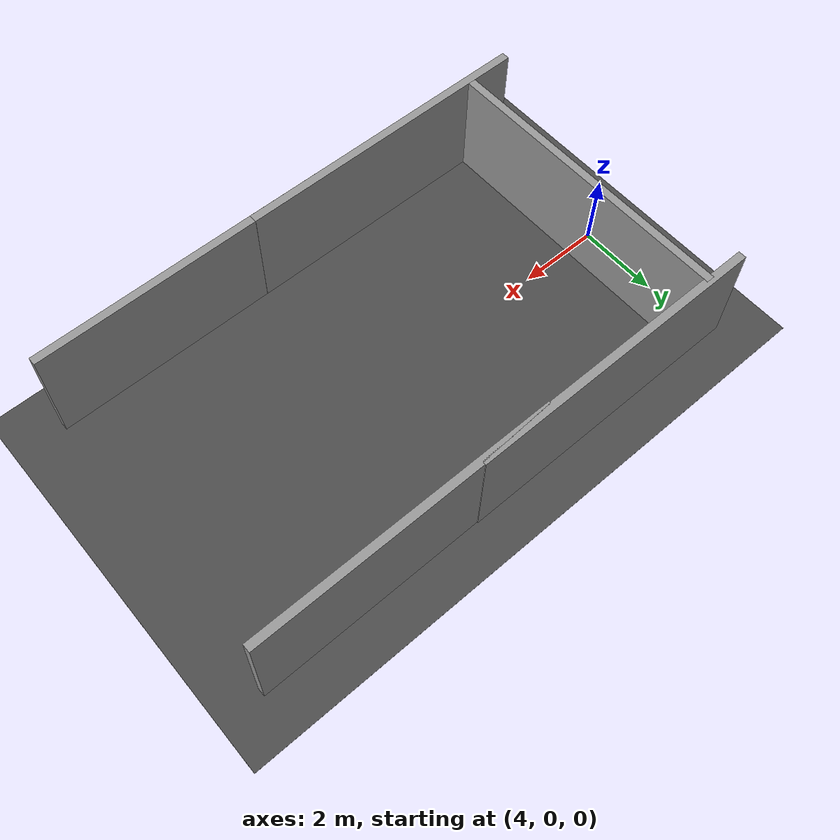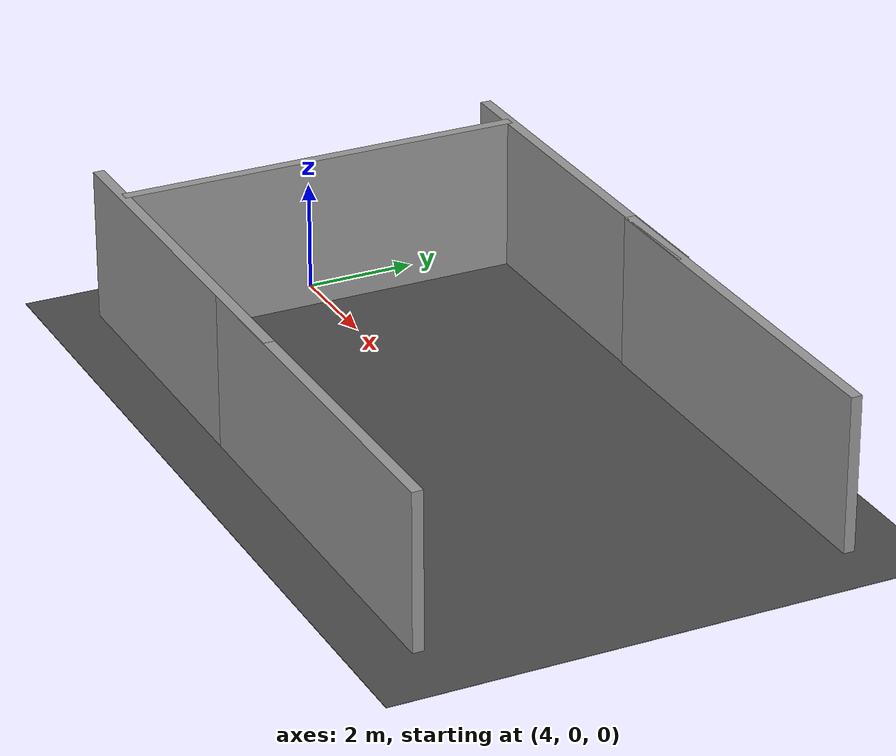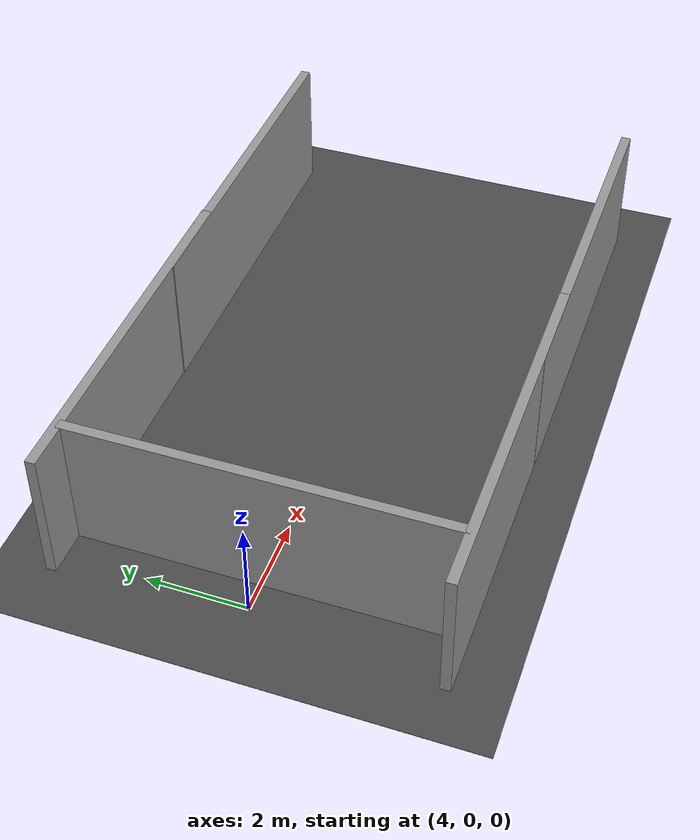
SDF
<sdf version="1.6">
 <world name="default">
  <scene>
   <sky><clouds><speed>20</speed></clouds></sky>
   <ambient>0.4 0.4 0.4 1</ambient>
   <background>0.7 0.7 0.7 1</background>
   <shadows>1</shadows>
  </scene>
  <light name="sun" type="directional">
   <pose>0 0 10 0 -0 0</pose>
   <diffuse>0.8 0.8 0.8 1</diffuse>
   <specular>0.1 0.1 0.1 1</specular>
   <attenuation>
    <range>1000</range>
    <constant>0.9</constant>
    <linear>0.01</linear>
    <quadratic>0.001</quadratic>
   </attenuation>
   <direction>-0.5 0.5 -1</direction>
  </light>
  <model name="asphalt_plane">
   <pose>-0.012146 -0.215469 0 0 -0 0</pose>
   <static>1</static>
   <link name="link">
    <collision name="collision"><geometry><box><size>9869.91 10000 0.01</size></box></geometry></collision>
    <visual name="visual">
     <cast_shadows>0</cast_shadows>
     <geometry><box><size>98.6991 100 0.01</size></box></geometry>
     <material>
      <script>
       <uri>file:///home/jtorde/Desktop/ws/src/acl-ros-extra-v2/acl_sim/urdf/grass/materials/scripts</uri>
       <uri>file:///home/jtorde/Desktop/ws/src/acl-ros-extra-v2/acl_sim/urdf/grass/materials/textures</uri>
       <name>vrc/asphalt</name>
      </script>
     </material>
    </visual>
   </link>
  </model>
  <gravity>0 0 -9.8</gravity>
  <magnetic_field>6e-06 2.3e-05 -4.2e-05</magnetic_field>
  <atmosphere type="adiabatic"/>
  <physics name="default_physics" default="0" type="ode">
   <max_step_size>0.001</max_step_size>
   <real_time_factor>1</real_time_factor>
   <real_time_update_rate>1000</real_time_update_rate>
  </physics>
  <spherical_coordinates>
   <surface_model>EARTH_WGS84</surface_model>
   <latitude_deg>0</latitude_deg>
   <longitude_deg>0</longitude_deg>
   <elevation>0</elevation>
   <heading_deg>0</heading_deg>
  </spherical_coordinates>
  <light name="user_directional_light_0" type="directional">
   <pose>34.9855 -1.80031 1 0 -0 0</pose>
   <diffuse>0.5 0.5 0.5 1</diffuse>
   <specular>0.1 0.1 0.1 1</specular>
   <direction>0.1 0.1 -0.9</direction>
   <attenuation>
    <range>20</range>
    <constant>0.5</constant>
    <linear>0.01</linear>
    <quadratic>0.001</quadratic>
   </attenuation>
  </light>
  <light name="user_directional_light_1" type="directional">
   <pose>65.0809 -34.7744 1 0 -0 0</pose>
   <diffuse>0.5 0.5 0.5 1</diffuse>
   <specular>0.1 0.1 0.1 1</specular>
   <direction>0.1 0.1 -0.9</direction>
   <attenuation>
    <range>20</range>
    <constant>0.5</constant>
    <linear>0.01</linear>
    <quadratic>0.001</quadratic>
   </attenuation>
  </light>
  <light name="user_directional_light_2" type="directional">
   <pose>27.7796 -25.3494 1 0 -0 0</pose>
   <diffuse>0.5 0.5 0.5 1</diffuse>
   <specular>0.1 0.1 0.1 1</specular>
   <direction>0.1 0.1 -0.9</direction>
   <attenuation>
    <range>20</range>
    <constant>0.5</constant>
    <linear>0.01</linear>
    <quadratic>0.001</quadratic>
   </attenuation>
  </light>
  <model name="grey_wall">
   <static>1</static>
   <link name="link">
    <pose>0 0 1.4 0 -0 0</pose>
    <collision name="collision"><geometry><box><size>7.5 0.2 2.8</size></box></geometry></collision>
    <visual name="visual">
     <cast_shadows>0</cast_shadows>
     <geometry><box><size>7.5 0.2 2.8</size></box></geometry>
     <material>
      <script>
       <uri>model://grey_wall/materials/scripts</uri>
       <uri>model://grey_wall/materials/textures</uri>
       <name>vrc/grey_wall</name>
      </script>
     </material>
    </visual>
   </link>
   <pose>7.38231 3.71309 -0.00278 0 -0 0</pose>
  </model>
  <model name="grey_wall_clone">
   <static>1</static>
   <link name="link">
    <pose>0 0 1.4 0 -0 0</pose>
    <collision name="collision"><geometry><box><size>7.5 0.2 2.8</size></box></geometry></collision>
    <visual name="visual">
     <cast_shadows>0</cast_shadows>
     <geometry><box><size>7.5 0.2 2.8</size></box></geometry>
     <material>
      <script>
       <uri>model://grey_wall/materials/scripts</uri>
       <uri>model://grey_wall/materials/textures</uri>
       <name>vrc/grey_wall</name>
      </script>
     </material>
    </visual>
   </link>
   <pose>4.64484 -0.04014 0 0 0 -1.56755</pose>
  </model>
  <model name="grey_wall_clone_0">
   <static>1</static>
   <link name="link">
    <pose>0 0 1.4 0 -0 0</pose>
    <collision name="collision"><geometry><box><size>7.5 0.2 2.8</size></box></geometry></collision>
    <visual name="visual">
     <cast_shadows>0</cast_shadows>
     <geometry><box><size>7.5 0.2 2.8</size></box></geometry>
     <material>
      <script>
       <uri>model://grey_wall/materials/scripts</uri>
       <uri>model://grey_wall/materials/textures</uri>
       <name>vrc/grey_wall</name>
      </script>
     </material>
    </visual>
   </link>
   <pose>7.22705 -3.80009 0 0 -0 0</pose>
  </model>
  <model name="grey_wall_clone_1">
   <static>1</static>
   <link name="link">
    <pose>0 0 1.4 0 -0 0</pose>
    <collision name="collision"><geometry><box><size>7.5 0.2 2.8</size></box></geometry></collision>
    <visual name="visual">
     <cast_shadows>0</cast_shadows>
     <geometry><box><size>7.5 0.2 2.8</size></box></geometry>
     <material>
      <script>
       <uri>model://grey_wall/materials/scripts</uri>
       <uri>model://grey_wall/materials/textures</uri>
       <name>vrc/grey_wall</name>
      </script>
     </material>
    </visual>
   </link>
   <pose>12.9932 3.69257 -0.00278 0 -0 0</pose>
  </model>
  <model name="grey_wall_clone_1_clone">
   <static>1</static>
   <link name="link">
    <pose>0 0 1.4 0 -0 0</pose>
    <collision name="collision"><geometry><box><size>7.5 0.2 2.8</size></box></geometry></collision>
    <visual name="visual">
     <cast_shadows>0</cast_shadows>
     <geometry><box><size>7.5 0.2 2.8</size></box></geometry>
     <material>
      <script>
       <uri>model://grey_wall/materials/scripts</uri>
       <uri>model://grey_wall/materials/textures</uri>
       <name>vrc/grey_wall</name>
      </script>
     </material>
    </visual>
   </link>
   <pose>12.7763 -3.80296 -0.00278 0 -0 0</pose>
  </model>
 </world>
</sdf>
